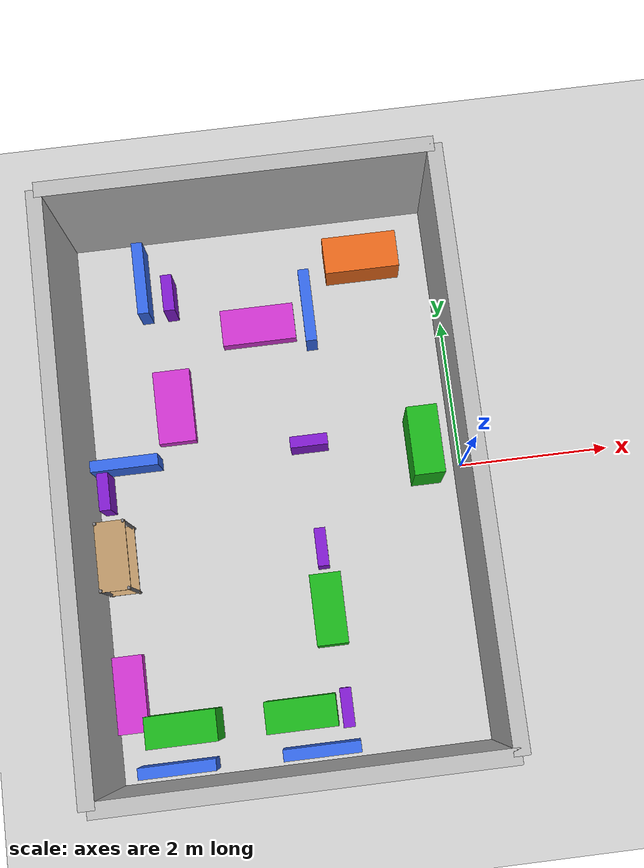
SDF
<sdf version="1.9">
 <world name="empty">
  <physics name="1ms" type="dart">
   <max_step_size>0.001</max_step_size>
   <real_time_factor>1</real_time_factor>
   <real_time_update_rate>250</real_time_update_rate>
  </physics>
  <plugin name="gz::sim::systems::Sensors" filename="gz-sim-sensors-system">
   <render_engine>ogre2</render_engine>
  </plugin>
  <plugin name="gz::sim::systems::Imu" filename="gz-sim-imu-system"/>
  <plugin name="gz::sim::systems::Physics" filename="gz-sim-physics-system"/>
  <plugin name="gz::sim::systems::SceneBroadcaster" filename="gz-sim-scene-broadcaster-system"/>
  <plugin name="gz::sim::systems::UserCommands" filename="gz-sim-user-commands-system"/>
  <plugin filename="liblink_attatcher_plugin.so" name="link_attatcher::LinkAttatcherPlugin"/>
  <gravity>0 0 -9.8</gravity>
  <magnetic_field>6e-06 2.3e-05 -4.2e-05</magnetic_field>
  <atmosphere type="adiabatic"/>
  <scene><ambient>0.4 0.4 0.4 1</ambient><background>0.7 0.7 0.7 1</background><shadows>true</shadows></scene>
  <model name="room">
   <static>true</static>
   <link name="north_wall">
    <pose>-2.5 3.75 1 0 -0 0</pose>
    <collision name="c"><geometry><box><size>5 0.2 2</size></box></geometry></collision>
    <visual name="v"><geometry><box><size>5 0.2 2</size></box></geometry></visual>
    <inertial>
     <mass>1</mass>
     <inertia><ixx>1</ixx><ixy>0</ixy><ixz>0</ixz><iyy>1</iyy><iyz>0</iyz><izz>1</izz></inertia>
    </inertial>
   </link>
   <link name="south_wall">
    <pose>-2.5 -3.75 1 0 -0 0</pose>
    <collision name="c"><geometry><box><size>5 0.2 2</size></box></geometry></collision>
    <visual name="v"><geometry><box><size>5 0.2 2</size></box></geometry></visual>
    <inertial>
     <mass>1</mass>
     <inertia><ixx>1</ixx><ixy>0</ixy><ixz>0</ixz><iyy>1</iyy><iyz>0</iyz><izz>1</izz></inertia>
    </inertial>
   </link>
   <link name="east_wall">
    <pose>0 0 1 0 -0 1.5708</pose>
    <collision name="c"><geometry><box><size>7.5 0.2 2</size></box></geometry></collision>
    <visual name="v"><geometry><box><size>7.5 0.2 2</size></box></geometry></visual>
    <inertial>
     <mass>1</mass>
     <inertia><ixx>1</ixx><ixy>0</ixy><ixz>0</ixz><iyy>1</iyy><iyz>0</iyz><izz>1</izz></inertia>
    </inertial>
   </link>
   <link name="west_wall">
    <pose>-5 0 1 0 -0 1.5708</pose>
    <collision name="c"><geometry><box><size>7.5 0.2 2</size></box></geometry></collision>
    <visual name="v"><geometry><box><size>7.5 0.2 2</size></box></geometry></visual>
    <inertial>
     <mass>1</mass>
     <inertia><ixx>1</ixx><ixy>0</ixy><ixz>0</ixz><iyy>1</iyy><iyz>0</iyz><izz>1</izz></inertia>
    </inertial>
   </link>
  </model>
  <model name="ground_plane">
   <static>true</static>
   <link name="link">
    <collision name="surface">
     <geometry><plane><normal>0 0 1</normal><size>100 100</size></plane></geometry>
     <surface><friction><ode><mu>60</mu><mu2>0</mu2></ode></friction></surface>
    </collision>
    <visual name="surface">
     <geometry><plane><normal>0 0 1</normal><size>100 100</size></plane></geometry>
     <material><ambient>0.8 0.8 0.8 1</ambient><diffuse>0.8 0.8 0.8 1</diffuse></material>
    </visual>
    <inertial>
     <mass>1</mass>
     <inertia><ixx>1</ixx><ixy>0</ixy><ixz>0</ixz><iyy>1</iyy><iyz>0</iyz><izz>1</izz></inertia>
    </inertial>
   </link>
  </model>
  <model name="cc_1">
   <static>true</static>
   <pose>-1 3 0.25 0 0 0</pose>
   <link name="link">
    <inertial>
     <inertia><ixx>0.16666</ixx><ixy>0</ixy><ixz>0</ixz><iyy>0.16666</iyy><iyz>0</iyz><izz>0.16666</izz></inertia>
     <mass>1</mass>
    </inertial>
    <collision name="c">
     <geometry><box><size>1 0.5 0.5</size></box></geometry>
     <surface><friction><ode><mu>10</mu><mu2>10</mu2></ode></friction></surface>
    </collision>
    <visual name="v">
     <geometry><box><size>1 0.5 0.5</size></box></geometry>
     <material><ambient>0.9 0.4 0.1 1</ambient><diffuse>0.9 0.4 0.1 1</diffuse></material>
    </visual>
   </link>
  </model>
  <model name="wb_top">
   <static>true</static>
   <pose>-2.5 2.25 0.1 0 0 0</pose>
   <link name="link">
    <inertial>
     <inertia><ixx>0.16666</ixx><ixy>0</ixy><ixz>0</ixz><iyy>0.16666</iyy><iyz>0</iyz><izz>0.16666</izz></inertia>
     <mass>1</mass>
    </inertial>
    <collision name="c">
     <geometry><box><size>1 0.5 0.2</size></box></geometry>
     <surface><friction><ode><mu>10</mu><mu2>10</mu2></ode></friction></surface>
    </collision>
    <visual name="v">
     <geometry><box><size>1 0.5 0.2</size></box></geometry>
     <material><ambient>0.8 0.2 0.8 1</ambient><diffuse>0.8 0.2 0.8 1</diffuse></material>
    </visual>
   </link>
  </model>
  <model name="wb_left">
   <static>true</static>
   <pose>-3.75 1.25 0.1 0 0 1.5708</pose>
   <link name="link">
    <inertial>
     <inertia><ixx>0.16666</ixx><ixy>0</ixy><ixz>0</ixz><iyy>0.16666</iyy><iyz>0</iyz><izz>0.16666</izz></inertia>
     <mass>1</mass>
    </inertial>
    <collision name="c">
     <geometry><box><size>1 0.5 0.2</size></box></geometry>
     <surface><friction><ode><mu>10</mu><mu2>10</mu2></ode></friction></surface>
    </collision>
    <visual name="v">
     <geometry><box><size>1 0.5 0.2</size></box></geometry>
     <material><ambient>0.8 0.2 0.8 1</ambient><diffuse>0.8 0.2 0.8 1</diffuse></material>
    </visual>
   </link>
  </model>
  <model name="wb_bottom">
   <static>true</static>
   <pose>-4.75 -2.5 0.1 0 0 1.5708</pose>
   <link name="link">
    <inertial>
     <inertia><ixx>0.16666</ixx><ixy>0</ixy><ixz>0</ixz><iyy>0.16666</iyy><iyz>0</iyz><izz>0.16666</izz></inertia>
     <mass>1</mass>
    </inertial>
    <collision name="c">
     <geometry><box><size>1 0.5 0.2</size></box></geometry>
     <surface><friction><ode><mu>10</mu><mu2>10</mu2></ode></friction></surface>
    </collision>
    <visual name="v">
     <geometry><box><size>1 0.5 0.2</size></box></geometry>
     <material><ambient>0.8 0.2 0.8 1</ambient><diffuse>0.8 0.2 0.8 1</diffuse></material>
    </visual>
   </link>
  </model>
  <model name="s_top">
   <pose>-2.5 -3 0.45 0 0 1.5708</pose>
   <static>true</static>
   <link name="link">
    <inertial>
     <inertia><ixx>0.16666</ixx><ixy>0</ixy><ixz>0</ixz><iyy>0.16666</iyy><iyz>0</iyz><izz>0.16666</izz></inertia>
     <mass>1</mass>
    </inertial>
    <collision name="c">
     <geometry><box><size>0.4 0.9 0.9</size></box></geometry>
     <surface><friction><ode><mu>10</mu><mu2>10</mu2></ode></friction></surface>
    </collision>
    <visual name="v">
     <geometry><box><size>0.4 0.9 0.9</size></box></geometry>
     <material><ambient>0.1 0.7 0.1 1</ambient><diffuse>0.1 0.7 0.1 1</diffuse></material>
    </visual>
   </link>
  </model>
  <model name="s_left_mid">
   <pose>-4.0 -3 0.45 0 0 1.5708</pose>
   <static>true</static>
   <link name="link">
    <inertial>
     <inertia><ixx>0.16666</ixx><ixy>0</ixy><ixz>0</ixz><iyy>0.16666</iyy><iyz>0</iyz><izz>0.16666</izz></inertia>
     <mass>1</mass>
    </inertial>
    <collision name="c">
     <geometry><box><size>0.4 0.9 0.9</size></box></geometry>
     <surface><friction><ode><mu>10</mu><mu2>10</mu2></ode></friction></surface>
    </collision>
    <visual name="v">
     <geometry><box><size>0.4 0.9 0.9</size></box></geometry>
     <material><ambient>0.1 0.7 0.1 1</ambient><diffuse>0.1 0.7 0.1 1</diffuse></material>
    </visual>
   </link>
  </model>
  <model name="s_center_mid">
   <pose>-2 -1.75 0.45 0 0 0</pose>
   <static>true</static>
   <link name="link">
    <inertial>
     <inertia><ixx>0.16666</ixx><ixy>0</ixy><ixz>0</ixz><iyy>0.16666</iyy><iyz>0</iyz><izz>0.16666</izz></inertia>
     <mass>1</mass>
    </inertial>
    <collision name="c">
     <geometry><box><size>0.4 0.9 0.9</size></box></geometry>
     <surface><friction><ode><mu>10</mu><mu2>10</mu2></ode></friction></surface>
    </collision>
    <visual name="v">
     <geometry><box><size>0.4 0.9 0.9</size></box></geometry>
     <material><ambient>0.1 0.7 0.1 1</ambient><diffuse>0.1 0.7 0.1 1</diffuse></material>
    </visual>
   </link>
  </model>
  <model name="s_bot_left_shelf_unit">
   <static>true</static>
   <pose>-4.6500 -0.75 0.0 0 0 1.5708</pose>
   <link name="post_front_right">
    <pose>0.43 -0.18 0.45 0 0 0</pose>
    <collision name="post_front_right_collision">
     <geometry><cylinder><radius>0.02</radius><length>0.9</length></cylinder></geometry>
    </collision>
    <visual name="post_front_right_visual">
     <geometry><cylinder><radius>0.02</radius><length>0.9</length></cylinder></geometry>
     <material><ambient>0.5 0.5 0.52 1</ambient><diffuse>0.5 0.5 0.52 1</diffuse></material>
    </visual>
   </link>
   <link name="post_front_left">
    <pose>0.43 0.18 0.45 0 0 0</pose>
    <collision name="post_front_left_collision">
     <geometry><cylinder><radius>0.02</radius><length>0.9</length></cylinder></geometry>
    </collision>
    <visual name="post_front_left_visual">
     <geometry><cylinder><radius>0.02</radius><length>0.9</length></cylinder></geometry>
     <material><ambient>0.5 0.5 0.52 1</ambient><diffuse>0.5 0.5 0.52 1</diffuse></material>
    </visual>
   </link>
   <link name="post_back_right">
    <pose>-0.43 -0.18 0.45 0 0 0</pose>
    <collision name="post_back_right_collision">
     <geometry><cylinder><radius>0.02</radius><length>0.9</length></cylinder></geometry>
    </collision>
    <visual name="post_back_right_visual">
     <geometry><cylinder><radius>0.02</radius><length>0.9</length></cylinder></geometry>
     <material><ambient>0.5 0.5 0.52 1</ambient><diffuse>0.5 0.5 0.52 1</diffuse></material>
    </visual>
   </link>
   <link name="post_back_left">
    <pose>-0.43 0.18 0.45 0 0 0</pose>
    <collision name="post_back_left_collision">
     <geometry><cylinder><radius>0.02</radius><length>0.9</length></cylinder></geometry>
    </collision>
    <visual name="post_back_left_visual">
     <geometry><cylinder><radius>0.02</radius><length>0.9</length></cylinder></geometry>
     <material><ambient>0.5 0.5 0.52 1</ambient><diffuse>0.5 0.5 0.52 1</diffuse></material>
    </visual>
   </link>
   <link name="shelf_row_bottom">
    <pose>0 0 0.15 0 0 0</pose>
    <collision name="shelf_row_bottom_collision">
     <geometry><box><size>0.9 0.4 0.02</size></box></geometry>
    </collision>
    <visual name="shelf_row_bottom_visual">
     <geometry><box><size>0.9 0.4 0.02</size></box></geometry>
     <material><ambient>0.72 0.58 0.40 1</ambient><diffuse>0.72 0.58 0.40 1</diffuse></material>
    </visual>
   </link>
   <link name="shelf_row_top">
    <pose>0 0 0.85 0 0 0</pose>
    <collision name="shelf_row_top_collision">
     <geometry><box><size>0.9 0.4 0.02</size></box></geometry>
    </collision>
    <visual name="shelf_row_top_visual">
     <geometry><box><size>0.9 0.4 0.02</size></box></geometry>
     <material><ambient>0.72 0.58 0.40 1</ambient><diffuse>0.72 0.58 0.40 1</diffuse></material>
    </visual>
   </link>
  </model>
  <model name="s_bot_center">
   <static>true</static>
   <pose>-0.5 0.25 0.45 0 0 0</pose>
   <static>true</static>
   <link name="link">
    <inertial>
     <inertia><ixx>0.16666</ixx><ixy>0</ixy><ixz>0</ixz><iyy>0.16666</iyy><iyz>0</iyz><izz>0.16666</izz></inertia>
     <mass>1</mass>
    </inertial>
    <collision name="c">
     <geometry><box><size>0.4 0.9 0.9</size></box></geometry>
     <surface><friction><ode><mu>1000</mu><mu2>100</mu2></ode></friction></surface>
    </collision>
    <visual name="v">
     <geometry><box><size>0.4 0.9 0.9</size></box></geometry>
     <material><ambient>0.1 0.7 0.1 1</ambient><diffuse>0.1 0.7 0.1 1</diffuse></material>
    </visual>
   </link>
  </model>
  <model name="bw_north_L">
   <static>true</static>
   <pose>-1.80 2.35 0.25 0 0 1.5708</pose>
   <link name="link">
    <inertial>
     <inertia><ixx>0.16666</ixx><ixy>0</ixy><ixz>0</ixz><iyy>0.16666</iyy><iyz>0</iyz><izz>0.16666</izz></inertia>
     <mass>1</mass>
    </inertial>
    <collision name="c">
     <geometry><box><size>1 0.15 0.5</size></box></geometry>
     <surface><friction><ode><mu>10</mu><mu2>10</mu2></ode></friction></surface>
    </collision>
    <visual name="v">
     <geometry><box><size>1 0.15 0.5</size></box></geometry>
     <material><ambient>0.2 0.4 0.9 1</ambient><diffuse>0.2 0.4 0.9 1</diffuse></material>
    </visual>
   </link>
  </model>
  <model name="bw_north_R">
   <static>true</static>
   <pose>-4 3.0 0.25 0 0 1.5708</pose>
   <link name="link">
    <inertial>
     <inertia><ixx>0.16666</ixx><ixy>0</ixy><ixz>0</ixz><iyy>0.16666</iyy><iyz>0</iyz><izz>0.16666</izz></inertia>
     <mass>1</mass>
    </inertial>
    <collision name="c">
     <geometry><box><size>1 0.15 0.5</size></box></geometry>
     <surface><friction><ode><mu>1000</mu><mu2>10000</mu2></ode></friction></surface>
    </collision>
    <visual name="v">
     <geometry><box><size>1 0.15 0.5</size></box></geometry>
     <material><ambient>0.2 0.4 0.9 1</ambient><diffuse>0.2 0.4 0.9 1</diffuse></material>
    </visual>
   </link>
  </model>
  <model name="bw_east_N">
   <static>true</static>
   <pose>-4.5 0.5 0.25 0 0 0</pose>
   <link name="link">
    <inertial>
     <inertia><ixx>0.16666</ixx><ixy>0</ixy><ixz>0</ixz><iyy>0.16666</iyy><iyz>0</iyz><izz>0.16666</izz></inertia>
     <mass>1</mass>
    </inertial>
    <collision name="c">
     <geometry><box><size>1 0.15 0.5</size></box></geometry>
     <surface><friction><ode><mu>10</mu><mu2>10</mu2></ode></friction></surface>
    </collision>
    <visual name="v">
     <geometry><box><size>1 0.15 0.5</size></box></geometry>
     <material><ambient>0.2 0.4 0.9 1</ambient><diffuse>0.2 0.4 0.9 1</diffuse></material>
    </visual>
   </link>
  </model>
  <model name="bw_south_L">
   <static>true</static>
   <pose>-4.15 -3.5 0.25 0 0 0</pose>
   <link name="link">
    <inertial>
     <inertia><ixx>0.16666</ixx><ixy>0</ixy><ixz>0</ixz><iyy>0.16666</iyy><iyz>0</iyz><izz>0.16666</izz></inertia>
     <mass>1</mass>
    </inertial>
    <collision name="c">
     <geometry><box><size>1 0.15 0.5</size></box></geometry>
     <surface><friction><ode><mu>10</mu><mu2>10</mu2></ode></friction></surface>
    </collision>
    <visual name="v">
     <geometry><box><size>1 0.15 0.5</size></box></geometry>
     <material><ambient>0.2 0.4 0.9 1</ambient><diffuse>0.2 0.4 0.9 1</diffuse></material>
    </visual>
   </link>
  </model>
  <model name="bw_south_R">
   <static>true</static>
   <pose>-2.3 -3.5 0.25 0 0 0</pose>
   <link name="link">
    <inertial>
     <inertia><ixx>0.16666</ixx><ixy>0</ixy><ixz>0</ixz><iyy>0.16666</iyy><iyz>0</iyz><izz>0.16666</izz></inertia>
     <mass>1</mass>
    </inertial>
    <collision name="c">
     <geometry><box><size>1 0.15 0.5</size></box></geometry>
     <surface><friction><ode><mu>10</mu><mu2>10</mu2></ode></friction></surface>
    </collision>
    <visual name="v">
     <geometry><box><size>1 0.15 0.5</size></box></geometry>
     <material><ambient>0.2 0.4 0.9 1</ambient><diffuse>0.2 0.4 0.9 1</diffuse></material>
    </visual>
   </link>
  </model>
  <model name="pw_mid_1">
   <static>true</static>
   <pose>-3.65 2.75 0.25 0 0 1.5708</pose>
   <link name="link">
    <inertial>
     <inertia><ixx>0.16666</ixx><ixy>0</ixy><ixz>0</ixz><iyy>0.16666</iyy><iyz>0</iyz><izz>0.16666</izz></inertia>
     <mass>1</mass>
    </inertial>
    <collision name="c">
     <geometry><box><size>0.5 0.15 0.5</size></box></geometry>
     <surface><friction><ode><mu>10</mu><mu2>10</mu2></ode></friction></surface>
    </collision>
    <visual name="v">
     <geometry><box><size>0.5 0.15 0.5</size></box></geometry>
     <material><ambient>0.5 0.1 0.8 1</ambient><diffuse>0.5 0.1 0.8 1</diffuse></material>
    </visual>
   </link>
  </model>
  <model name="pw_mid_2">
   <static>true</static>
   <pose>-4.75 0.15 0.25 0 0 1.5708</pose>
   <link name="link">
    <inertial>
     <inertia><ixx>0.16666</ixx><ixy>0</ixy><ixz>0</ixz><iyy>0.16666</iyy><iyz>0</iyz><izz>0.16666</izz></inertia>
     <mass>1</mass>
    </inertial>
    <collision name="c">
     <geometry><box><size>0.5 0.15 0.5</size></box></geometry>
     <surface><friction><ode><mu>10</mu><mu2>10</mu2></ode></friction></surface>
    </collision>
    <visual name="v">
     <geometry><box><size>0.5 0.15 0.5</size></box></geometry>
     <material><ambient>0.5 0.1 0.8 1</ambient><diffuse>0.5 0.1 0.8 1</diffuse></material>
    </visual>
   </link>
  </model>
  <model name="pw_mid_3">
   <static>true</static>
   <pose>-2 0.5 0.25 0 0 0</pose>
   <link name="link">
    <inertial>
     <inertia><ixx>0.16666</ixx><ixy>0</ixy><ixz>0</ixz><iyy>0.16666</iyy><iyz>0</iyz><izz>0.16666</izz></inertia>
     <mass>1</mass>
    </inertial>
    <collision name="c">
     <geometry><box><size>0.5 0.15 0.5</size></box></geometry>
     <surface><friction><ode><mu>10</mu><mu2>10</mu2></ode></friction></surface>
    </collision>
    <visual name="v">
     <geometry><box><size>0.5 0.15 0.5</size></box></geometry>
     <material><ambient>0.5 0.1 0.8 1</ambient><diffuse>0.5 0.1 0.8 1</diffuse></material>
    </visual>
   </link>
  </model>
  <model name="pw_mid_4">
   <static>true</static>
   <pose>-2 -0.92 0.25 0 0 1.5708</pose>
   <link name="link">
    <inertial>
     <inertia><ixx>0.16666</ixx><ixy>0</ixy><ixz>0</ixz><iyy>0.16666</iyy><iyz>0</iyz><izz>0.16666</izz></inertia>
     <mass>1</mass>
    </inertial>
    <collision name="c">
     <geometry><box><size>0.5 0.15 0.5</size></box></geometry>
     <surface><friction><ode><mu>10</mu><mu2>10</mu2></ode></friction></surface>
    </collision>
    <visual name="v">
     <geometry><box><size>0.5 0.15 0.5</size></box></geometry>
     <material><ambient>0.5 0.1 0.8 1</ambient><diffuse>0.5 0.1 0.8 1</diffuse></material>
    </visual>
   </link>
  </model>
  <model name="pw_mid_7">
   <static>true</static>
   <pose>-1.92 -3 0.25 0 0 1.5708</pose>
   <link name="link">
    <inertial>
     <inertia><ixx>0.16666</ixx><ixy>0</ixy><ixz>0</ixz><iyy>0.16666</iyy><iyz>0</iyz><izz>0.16666</izz></inertia>
     <mass>1</mass>
    </inertial>
    <collision name="c">
     <geometry><box><size>0.5 0.15 0.5</size></box></geometry>
     <surface><friction><ode><mu>10</mu><mu2>10</mu2></ode></friction></surface>
    </collision>
    <visual name="v">
     <geometry><box><size>0.5 0.15 0.5</size></box></geometry>
     <material><ambient>0.5 0.1 0.8 1</ambient><diffuse>0.5 0.1 0.8 1</diffuse></material>
    </visual>
   </link>
  </model>
  <light name="sun" type="directional">
   <pose>0 0 10 0 -0 0</pose>
   <intensity>1</intensity>
   <direction>-0.5 0.1 -0.9</direction>
   <diffuse>1 1 1 1</diffuse>
   <specular>0.1 0.1 0.1 1</specular>
   <attenuation><range>10</range><linear>1</linear><constant>1</constant><quadratic>0</quadratic></attenuation>
   <spot><inner_angle>0</inner_angle><outer_angle>0</outer_angle><falloff>0</falloff></spot>
  </light>
 </world>
</sdf>
